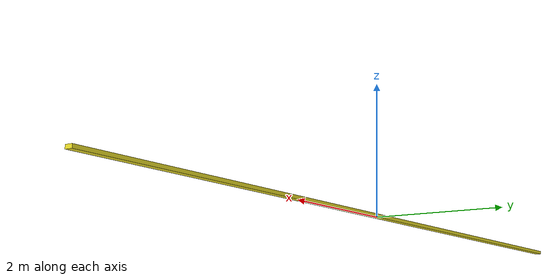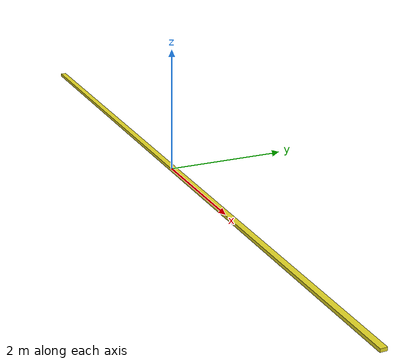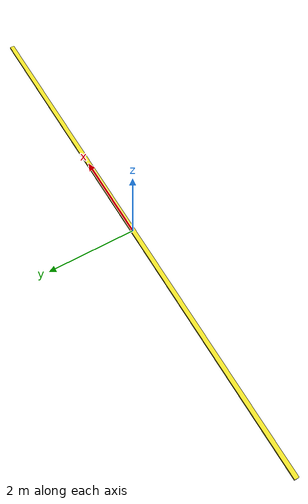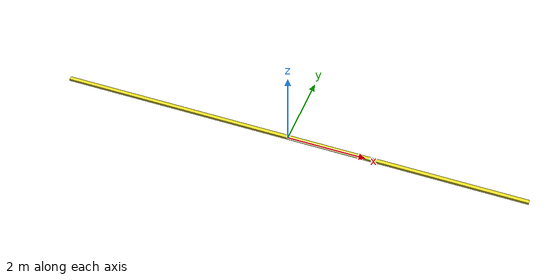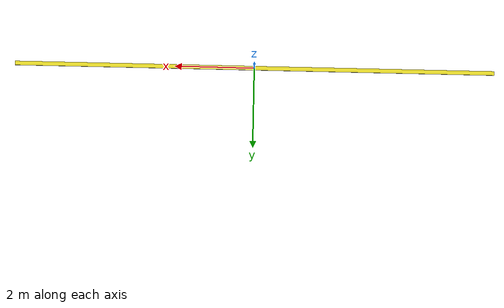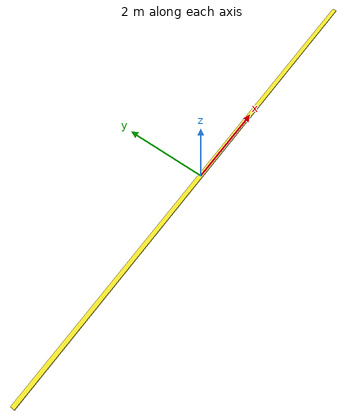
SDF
<?xml version="1.0" ?>
<sdf version="1.5">
  <model name="AIGC2_wind_10m">
    <static>true</static>
    <link name="link">
      <pose>0 0 0.02 0 0 0</pose>
      <collision name="collision">
        <geometry>
          <box>
            <size>12.0 0.1 0.05</size>
          </box>
        </geometry>
      </collision>
      <visual name="visual">
        <cast_shadows>false</cast_shadows>
        <geometry>
          <box>
            <size>12.0 0.1 0.05</size>
          </box>
        </geometry>
        <material>
          <script>
		    <name>Gazebo/Yellow</name>
		    <uri>file://media/materials/scripts/gazebo.material</uri>
          </script>
        </material>
      </visual>
    </link>
  </model>
</sdf>
